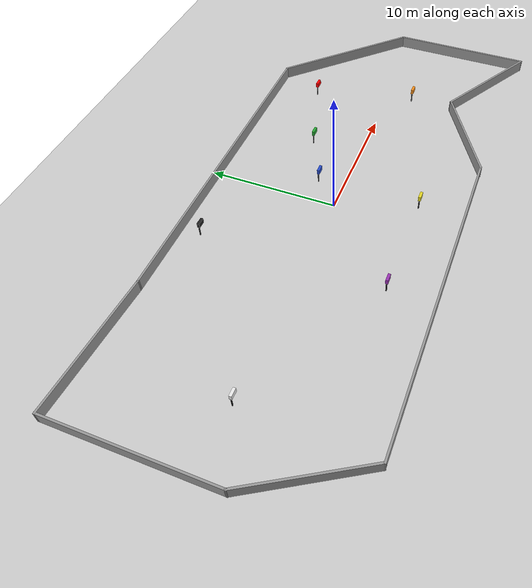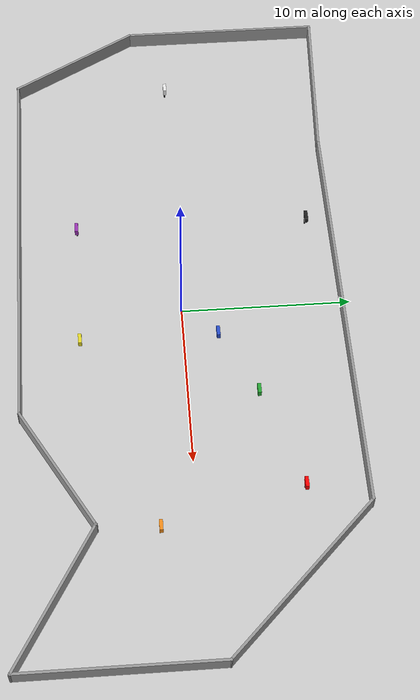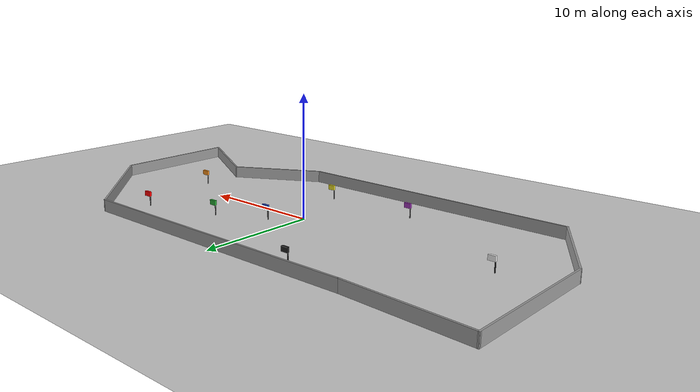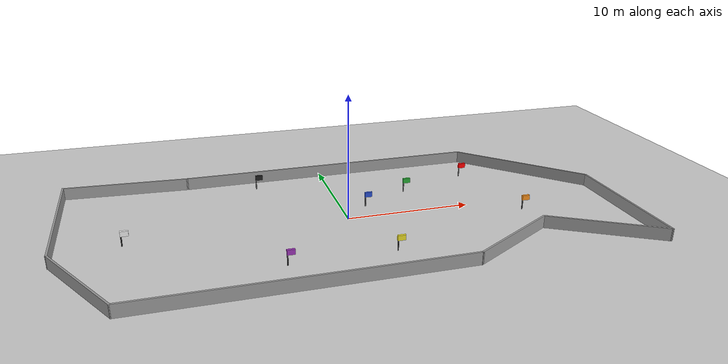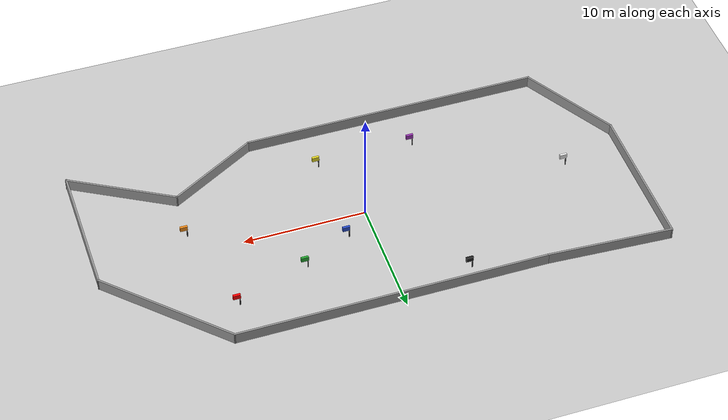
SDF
<?xml version="1.0" encoding="UTF-8"?>
<sdf version="1.4">
  <world name="default">
    <!-- *********************GROUND AND SUN***************************** -->
    <include>
      <uri>model://ground_plane</uri>
    </include>

    <include>
      <uri>model://sun</uri>
    </include>

    <!-- *********************FLAGS***************************** -->
    <include>
      <uri>model://red_flag</uri>
      <name>flag_1</name>
      <pose>12 6 0 0 0 0</pose>
    </include>

    <include>
      <uri>model://green_flag</uri>
      <name>flag_2</name>
      <pose>6 4 0 0 0 0</pose>
    </include>

    <include>
      <uri>model://blue_flag</uri>
      <name>flag_3</name>
      <pose>2 2 0 0 0 0</pose>
    </include>

    <include>
      <uri>model://black_flag</uri>
      <name>flag_4</name>
      <pose>-6 8 0 0 0 0</pose>
    </include>

    <include>
      <uri>model://orange_flag</uri>
      <name>flag_5</name>
      <pose>14 -2 0 0 0 0</pose>
    </include>

    <include>
      <uri>model://purple_flag</uri>
      <name>flag_6</name>
      <pose>-6 -6 0 0 0 0</pose>
    </include>

    <include>
      <uri>model://white_flag</uri>
      <name>flag_7</name>
      <pose>-17 0 0 0 0 0</pose>
    </include>

    <include>
      <uri>model://yellow_flag</uri>
      <name>flag_8</name>
      <pose>2 -6 0 0 0 0</pose>
    </include>

    <!-- **********************DISTANCE TO FLAGS PLUGIN**************************** -->
    <plugin name="dtfPlugin" filename="libdistance_to_flag_plugin.so">
      <nbFlags>8</nbFlags>
    </plugin>

    <!-- **********************WALLS**************************** -->
    <model name='walls_evry'>
      <pose frame=''>0 0 0 0 0 0</pose>
      <link name='Wall_0'>
        <collision name='Wall_0_Collision'>
          <geometry>
            <box>
              <size>25.25 0.15 1</size>
            </box>
          </geometry>
          <pose frame=''>0 0 0.5 0 -0 0</pose>
          <max_contacts>10</max_contacts>
          <surface>
            <contact>
              <ode/>
            </contact>
            <bounce/>
            <friction>
              <torsional>
                <ode/>
              </torsional>
              <ode/>
            </friction>
          </surface>
        </collision>
        <visual name='Wall_0_Visual'>
          <pose frame=''>0 0 0.5 0 -0 0</pose>
          <geometry>
            <box>
              <size>25.25 0.15 1</size>
            </box>
          </geometry>
          <material>
            <script>
              <uri>file://media/materials/scripts/gazebo.material</uri>
              <name>Gazebo/Grey</name>
            </script>
            <ambient>1 1 1 1</ambient>
          </material>
          <meta>
            <layer>0</layer>
          </meta>
        </visual>
        <pose frame=''>0.841619 9.46665 0 0 -0 0</pose>
        <self_collide>0</self_collide>
        <enable_wind>0</enable_wind>
        <kinematic>0</kinematic>
      </link>
      <link name='Wall_1'>
        <collision name='Wall_1_Collision'>
          <geometry>
            <box>
              <size>12 0.15 1</size>
            </box>
          </geometry>
          <pose frame=''>0 0 0.5 0 -0 0</pose>
          <max_contacts>10</max_contacts>
          <surface>
            <contact>
              <ode/>
            </contact>
            <bounce/>
            <friction>
              <torsional>
                <ode/>
              </torsional>
              <ode/>
            </friction>
          </surface>
        </collision>
        <visual name='Wall_1_Visual'>
          <pose frame=''>0 0 0.5 0 -0 0</pose>
          <geometry>
            <box>
              <size>12 0.15 1</size>
            </box>
          </geometry>
          <material>
            <script>
              <uri>file://media/materials/scripts/gazebo.material</uri>
              <name>Gazebo/Grey</name>
            </script>
            <ambient>1 1 1 1</ambient>
          </material>
          <meta>
            <layer>0</layer>
          </meta>
        </visual>
        <pose frame=''>17.5811 5.27714 0 0 -0 -0.785398</pose>
        <self_collide>0</self_collide>
        <enable_wind>0</enable_wind>
        <kinematic>0</kinematic>
      </link>
      <link name='Wall_2'>
        <collision name='Wall_2_Collision'>
          <geometry>
            <box>
              <size>11.25 0.15 1</size>
            </box>
          </geometry>
          <pose frame=''>0 0 0.5 0 -0 0</pose>
          <max_contacts>10</max_contacts>
          <surface>
            <contact>
              <ode/>
            </contact>
            <bounce/>
            <friction>
              <torsional>
                <ode/>
              </torsional>
              <ode/>
            </friction>
          </surface>
        </collision>
        <visual name='Wall_2_Visual'>
          <pose frame=''>0 0 0.5 0 -0 0</pose>
          <geometry>
            <box>
              <size>11.25 0.15 1</size>
            </box>
          </geometry>
          <material>
            <script>
              <uri>file://media/materials/scripts/gazebo.material</uri>
              <name>Gazebo/Grey</name>
            </script>
            <ambient>1 1 1 1</ambient>
          </material>
          <meta>
            <layer>0</layer>
          </meta>
        </visual>
        <pose frame=''>21.7706 -4.46235 0 0 -0 -1.5708</pose>
        <self_collide>0</self_collide>
        <enable_wind>0</enable_wind>
        <kinematic>0</kinematic>
      </link>
      <link name='Wall_3'>
        <collision name='Wall_3_Collision'>
          <geometry>
            <box>
              <size>9.25 0.15 1</size>
            </box>
          </geometry>
          <pose frame=''>0 0 0.5 0 -0 0</pose>
          <max_contacts>10</max_contacts>
          <surface>
            <contact>
              <ode/>
            </contact>
            <bounce/>
            <friction>
              <torsional>
                <ode/>
              </torsional>
              <ode/>
            </friction>
          </surface>
        </collision>
        <visual name='Wall_3_Visual'>
          <pose frame=''>0 0 0.5 0 -0 0</pose>
          <geometry>
            <box>
              <size>9.25 0.15 1</size>
            </box>
          </geometry>
          <material>
            <script>
              <uri>file://media/materials/scripts/gazebo.material</uri>
              <name>Gazebo/Grey</name>
            </script>
            <ambient>1 1 1 1</ambient>
          </material>
          <meta>
            <layer>0</layer>
          </meta>
        </visual>
        <pose frame=''>17.8301 -7.73735 0 0 -0 2.618</pose>
        <self_collide>0</self_collide>
        <enable_wind>0</enable_wind>
        <kinematic>0</kinematic>
      </link>
      <link name='Wall_4'>
        <collision name='Wall_4_Collision'>
          <geometry>
            <box>
              <size>8.25 0.15 1</size>
            </box>
          </geometry>
          <pose frame=''>0 0 0.5 0 -0 0</pose>
          <max_contacts>10</max_contacts>
          <surface>
            <contact>
              <ode/>
            </contact>
            <bounce/>
            <friction>
              <torsional>
                <ode/>
              </torsional>
              <ode/>
            </friction>
          </surface>
        </collision>
        <visual name='Wall_4_Visual'>
          <pose frame=''>0 0 0.5 0 -0 0</pose>
          <geometry>
            <box>
              <size>8.25 0.15 1</size>
            </box>
          </geometry>
          <material>
            <script>
              <uri>file://media/materials/scripts/gazebo.material</uri>
              <name>Gazebo/Grey</name>
            </script>
            <ambient>1 1 1 1</ambient>
          </material>
          <meta>
            <layer>0</layer>
          </meta>
        </visual>
        <pose frame=''>10.3826 -7.48735 0 0 -0 -2.61794</pose>
        <self_collide>0</self_collide>
        <enable_wind>0</enable_wind>
        <kinematic>0</kinematic>
      </link>
      <link name='Wall_5'>
        <collision name='Wall_5_Collision'>
          <geometry>
            <box>
              <size>24.5 0.15 1</size>
            </box>
          </geometry>
          <pose frame=''>0 0 0.5 0 -0 0</pose>
          <max_contacts>10</max_contacts>
          <surface>
            <contact>
              <ode/>
            </contact>
            <bounce/>
            <friction>
              <torsional>
                <ode/>
              </torsional>
              <ode/>
            </friction>
          </surface>
        </collision>
        <visual name='Wall_5_Visual'>
          <pose frame=''>0 0 0.5 0 -0 0</pose>
          <geometry>
            <box>
              <size>24.5 0.15 1</size>
            </box>
          </geometry>
          <material>
            <script>
              <uri>file://media/materials/scripts/gazebo.material</uri>
              <name>Gazebo/Grey</name>
            </script>
            <ambient>1 1 1 1</ambient>
          </material>
          <meta>
            <layer>0</layer>
          </meta>
        </visual>
        <pose frame=''>-5.29938 -9.51235 0 0 -0 3.14159</pose>
        <self_collide>0</self_collide>
        <enable_wind>0</enable_wind>
        <kinematic>0</kinematic>
      </link>
      <link name='Wall_6'>
        <collision name='Wall_6_Collision'>
          <geometry>
            <box>
              <size>8.75 0.15 1</size>
            </box>
          </geometry>
          <pose frame=''>0 0 0.5 0 -0 0</pose>
          <max_contacts>10</max_contacts>
          <surface>
            <contact>
              <ode/>
            </contact>
            <bounce/>
            <friction>
              <torsional>
                <ode/>
              </torsional>
              <ode/>
            </friction>
          </surface>
        </collision>
        <visual name='Wall_6_Visual'>
          <pose frame=''>0 0 0.5 0 -0 0</pose>
          <geometry>
            <box>
              <size>8.75 0.15 1</size>
            </box>
          </geometry>
          <material>
            <script>
              <uri>file://media/materials/scripts/gazebo.material</uri>
              <name>Gazebo/Grey</name>
            </script>
            <ambient>1 1 1 1</ambient>
          </material>
          <meta>
            <layer>0</layer>
          </meta>
        </visual>
        <pose frame=''>-19.6244 -5.78835 0 0 -0 2.09438</pose>
        <self_collide>0</self_collide>
        <enable_wind>0</enable_wind>
        <kinematic>0</kinematic>
      </link>
      <link name='Wall_7'>
        <collision name='Wall_7_Collision'>
          <geometry>
            <box>
              <size>12.25 0.15 1</size>
            </box>
          </geometry>
          <pose frame=''>0 0 0.5 0 -0 0</pose>
          <max_contacts>10</max_contacts>
          <surface>
            <contact>
              <ode/>
            </contact>
            <bounce/>
            <friction>
              <torsional>
                <ode/>
              </torsional>
              <ode/>
            </friction>
          </surface>
        </collision>
        <visual name='Wall_7_Visual'>
          <pose frame=''>0 0 0.5 0 -0 0</pose>
          <geometry>
            <box>
              <size>12.25 0.15 1</size>
            </box>
          </geometry>
          <material>
            <script>
              <uri>file://media/materials/scripts/gazebo.material</uri>
              <name>Gazebo/Grey</name>
            </script>
            <ambient>1 1 1 1</ambient>
          </material>
          <meta>
            <layer>0</layer>
          </meta>
        </visual>
        <pose frame=''>-21.7744 3.98564 0 0 -0 1.5708</pose>
        <self_collide>0</self_collide>
        <enable_wind>0</enable_wind>
        <kinematic>0</kinematic>
      </link>
      <link name='Wall_8'>
        <collision name='Wall_8_Collision'>
          <geometry>
            <box>
              <size>10.2325 0.15 1</size>
            </box>
          </geometry>
          <pose frame=''>0 0 0.5 0 -0 0</pose>
          <max_contacts>10</max_contacts>
          <surface>
            <contact>
              <ode/>
            </contact>
            <bounce/>
            <friction>
              <torsional>
                <ode/>
              </torsional>
              <ode/>
            </friction>
          </surface>
        </collision>
        <visual name='Wall_8_Visual'>
          <pose frame=''>0 0 0.5 0 -0 0</pose>
          <geometry>
            <box>
              <size>10.2325 0.15 1</size>
            </box>
          </geometry>
          <material>
            <script>
              <uri>file://media/materials/scripts/gazebo.material</uri>
              <name>Gazebo/Grey</name>
            </script>
            <ambient>1 1 1 1</ambient>
          </material>
          <meta>
            <layer>0</layer>
          </meta>
        </visual>
        <pose frame=''>-16.7414 9.75115 0 0 -0 -0.056467</pose>
        <self_collide>0</self_collide>
        <enable_wind>0</enable_wind>
        <kinematic>0</kinematic>
      </link>
      <static>1</static>
    </model>
  </world>
</sdf>

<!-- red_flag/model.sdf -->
<sdf version="1.4">
  <model name="flag">
    <static>true</static>
    <link name="flag">
      <visual name="base">
        <pose>0 0 0.5 0 0 0</pose>
        <geometry>
          <cylinder>
            <radius>0.05</radius>
            <length>1</length>
          </cylinder>
        </geometry>

        <!-- BLACK -->
        <material>
          <ambient>0 0 0 1</ambient>
        </material>
      </visual>

      <visual name="top">
        <pose>0.25 0 1 0 0 0</pose>
        <geometry>
          <box>
            <size>0.6 0.2 0.4</size>
          </box>
        </geometry>

        <!-- RED -->
        <material>
          <ambient>1 0 0 1</ambient>
        </material>

      </visual>
    </link>
  </model>
</sdf>

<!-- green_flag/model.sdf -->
<sdf version="1.4">
  <model name="flag">
    <static>true</static>
    <link name="flag">
      <visual name="base">
        <pose>0 0 0.5 0 0 0</pose>
        <geometry>
          <cylinder>
            <radius>0.05</radius>
            <length>1</length>
          </cylinder>
        </geometry>

        <!-- BLACK -->
        <material>
          <ambient>0 0 0 1</ambient>
        </material>
      </visual>

      <visual name="top">
        <pose>0.25 0 1 0 0 0</pose>
        <geometry>
          <box>
            <size>0.6 0.2 0.4</size>
          </box>
        </geometry>

        <!-- GREEN -->
        <material>
          <script>
            <uri>file://media/materials/scripts/gazebo.material</uri>
            <name>Gazebo/Green</name>
          </script>
        </material>

      </visual>
    </link>
  </model>
</sdf>

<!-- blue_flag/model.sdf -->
<sdf version="1.4">
  <model name="flag">
    <static>true</static>
    <link name="flag">
      <visual name="base">
        <pose>0 0 0.5 0 0 0</pose>
        <geometry>
          <cylinder>
            <radius>0.05</radius>
            <length>1</length>
          </cylinder>
        </geometry>

        <!-- BLACK -->
        <material>
          <ambient>0 0 0 1</ambient>
        </material>
      </visual>

      <visual name="top">
        <pose>0.25 0 1 0 0 0</pose>
        <geometry>
          <box>
            <size>0.6 0.2 0.4</size>
          </box>
        </geometry>

        <!-- BLUE -->
        <material>
          <script>
            <uri>file://media/materials/scripts/gazebo.material</uri>
            <name>Gazebo/Blue</name>
          </script>
        </material>

      </visual>
    </link>
  </model>
</sdf>

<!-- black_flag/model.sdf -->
<sdf version="1.4">
  <model name="flag">
    <static>true</static>
    <link name="flag">
      <visual name="base">
        <pose>0 0 0.5 0 0 0</pose>
        <geometry>
          <cylinder>
            <radius>0.05</radius>
            <length>1</length>
          </cylinder>
        </geometry>

        <!-- BLACK -->
        <material>
          <ambient>0 0 0 1</ambient>
        </material>
      </visual>

      <visual name="top">
        <pose>0.25 0 1 0 0 0</pose>
        <geometry>
          <box>
            <size>0.6 0.2 0.4</size>
          </box>
        </geometry>

        <!-- BLACK -->
        <material>
          <script>
            <uri>file://media/materials/scripts/gazebo.material</uri>
            <name>Gazebo/Black</name>
          </script>
        </material>

      </visual>
    </link>
  </model>
</sdf>

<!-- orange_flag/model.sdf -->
<sdf version="1.4">
  <model name="flag">
    <static>true</static>
    <link name="flag">
      <visual name="base">
        <pose>0 0 0.5 0 0 0</pose>
        <geometry>
          <cylinder>
            <radius>0.05</radius>
            <length>1</length>
          </cylinder>
        </geometry>

        <!-- BLACK -->
        <material>
          <ambient>0 0 0 1</ambient>
        </material>
      </visual>

      <visual name="top">
        <pose>0.25 0 1 0 0 0</pose>
        <geometry>
          <box>
            <size>0.6 0.2 0.4</size>
          </box>
        </geometry>

        <!-- ORANGE -->
        <material>
          <script>
            <uri>file://media/materials/scripts/gazebo.material</uri>
            <name>Gazebo/Orange</name>
          </script>
        </material>

      </visual>
    </link>
  </model>
</sdf>

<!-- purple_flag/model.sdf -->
<sdf version="1.4">
  <model name="flag">
    <static>true</static>
    <link name="flag">
      <visual name="base">
        <pose>0 0 0.5 0 0 0</pose>
        <geometry>
          <cylinder>
            <radius>0.05</radius>
            <length>1</length>
          </cylinder>
        </geometry>

        <!-- BLACK -->
        <material>
          <ambient>0 0 0 1</ambient>
        </material>
      </visual>

      <visual name="top">
        <pose>0.25 0 1 0 0 0</pose>
        <geometry>
          <box>
            <size>0.6 0.2 0.4</size>
          </box>
        </geometry>

        <!-- PURPLE -->
        <material>
          <script>
            <uri>file://media/materials/scripts/gazebo.material</uri>
            <name>Gazebo/Purple</name>
          </script>
        </material>

      </visual>
    </link>
  </model>
</sdf>

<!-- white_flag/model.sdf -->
<sdf version="1.4">
  <model name="flag">
    <static>true</static>
    <link name="flag">
      <visual name="base">
        <pose>0 0 0.5 0 0 0</pose>
        <geometry>
          <cylinder>
            <radius>0.05</radius>
            <length>1</length>
          </cylinder>
        </geometry>

        <!-- BLACK -->
        <material>
          <ambient>0 0 0 1</ambient>
        </material>
      </visual>

      <visual name="top">
        <pose>0.25 0 1 0 0 0</pose>
        <geometry>
          <box>
            <size>0.6 0.2 0.4</size>
          </box>
        </geometry>

        <!-- WHITE -->
        <material>
          <script>
            <uri>file://media/materials/scripts/gazebo.material</uri>
            <name>Gazebo/White</name>
          </script>
        </material>

      </visual>
    </link>
  </model>
</sdf>

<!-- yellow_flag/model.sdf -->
<sdf version="1.4">
  <model name="flag">
    <static>true</static>
    <link name="flag">
      <visual name="base">
        <pose>0 0 0.5 0 0 0</pose>
        <geometry>
          <cylinder>
            <radius>0.05</radius>
            <length>1</length>
          </cylinder>
        </geometry>

        <!-- BLACK -->
        <material>
          <ambient>0 0 0 1</ambient>
        </material>
      </visual>

      <visual name="top">
        <pose>0.25 0 1 0 0 0</pose>
        <geometry>
          <box>
            <size>0.6 0.2 0.4</size>
          </box>
        </geometry>

        <!-- YELLOW -->
        <material>
          <script>
            <uri>file://media/materials/scripts/gazebo.material</uri>
            <name>Gazebo/Yellow</name>
          </script>
        </material>

      </visual>
    </link>
  </model>
</sdf>
